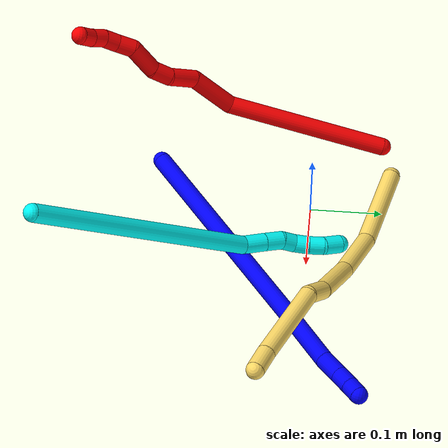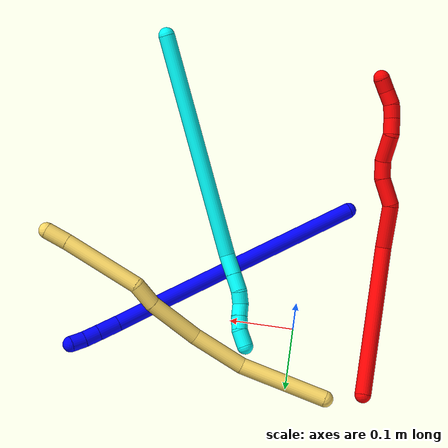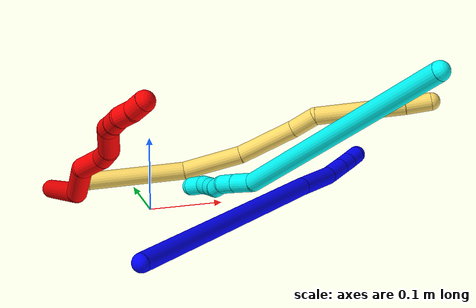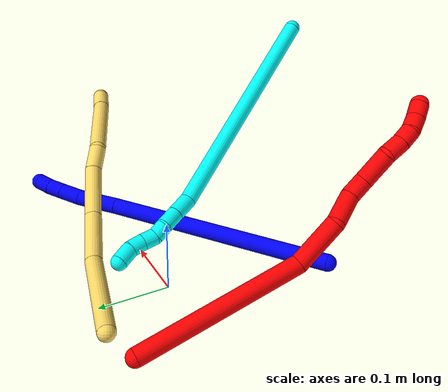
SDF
<sdf version="1.7">
 <world name="default">
  <model name="photoneo_s_sensor">
   <static>1</static>
   <pose>0 0 2 1.57079 1.57079 3.14159</pose>
   <link name="link">
    <inertial><mass>0.1</mass></inertial>
    <sensor name="sensor" type="depth">
     <update_rate>30</update_rate>
     <camera>
      <horizontal_fov>1.22</horizontal_fov>
      <image><width>1920</width><height>1200</height><format>B8G8R8</format></image>
      <clip><near>0.1</near><far>4</far></clip>
      <depth_camera><output>points</output></depth_camera>
     </camera>
     <plugin name="camera_plugin" filename="libgazebo_ros_depth_camera.so">
      <baseline>0.2</baseline>
      <alwaysOn>1</alwaysOn>
      <updateRate>0.0</updateRate>
      <cameraName>camera_ir</cameraName>
      <imageTopicName>/camera/color/image_raw</imageTopicName>
      <cameraInfoTopicName>/camera/color/camera_info</cameraInfoTopicName>
      <depthImageTopicName>/camera/depth/image_raw</depthImageTopicName>
      <depthImageCameraInfoTopicName>/camera/depth/camera_info</depthImageCameraInfoTopicName>
      <pointCloudTopicName>/camera/depth/points</pointCloudTopicName>
      <frameName>fr_optical</frameName>
      <pointCloudCutoff>0.1</pointCloudCutoff>
      <pointCloudCutoffMax>2.0</pointCloudCutoffMax>
      <distortionK1>0</distortionK1>
      <distortionK2>0</distortionK2>
      <distortionK3>0</distortionK3>
      <distortionT1>0</distortionT1>
      <distortionT2>0</distortionT2>
      <CxPrime>0</CxPrime>
      <Cx>0</Cx>
      <Cy>0</Cy>
      <focalLength>0</focalLength>
      <hackBaseline>0</hackBaseline>
     </plugin>
    </sensor>
   </link>
  </model>
  <model name="bin">
   <static>1</static>
   <link name="bottom">
    <collision name="collision-bottom">
     <pose>0 0 -0.01 0 -0 0</pose>
     <geometry><box><size>0.8 0.6 0.02</size></box></geometry>
     <surface>
      <friction><ode><mu>100</mu><mu2>100</mu2></ode></friction>
      <contact><collide_bitmask>65535</collide_bitmask></contact>
     </surface>
    </collision>
   </link>
   <link name="west_wall">
    <collision name="collision-west_wall">
     <pose>-0.41 0 0.1 0 -0 0</pose>
     <geometry><box><size>0.02 0.6 0.2</size></box></geometry>
     <surface>
      <friction><ode><mu>100</mu><mu2>100</mu2></ode></friction>
      <contact><collide_bitmask>65535</collide_bitmask></contact>
     </surface>
    </collision>
   </link>
   <link name="east_wall">
    <collision name="collision-east_wall">
     <pose>0.41 0 0.1 0 -0 0</pose>
     <geometry><box><size>0.02 0.6 0.2</size></box></geometry>
     <surface>
      <friction><ode><mu>100</mu><mu2>100</mu2></ode></friction>
      <contact><collide_bitmask>65535</collide_bitmask></contact>
     </surface>
    </collision>
   </link>
   <link name="south_wall">
    <collision name="collision-south_wall">
     <pose>0 -0.31 0.1 0 -0 0</pose>
     <geometry><box><size>0.8 0.02 0.2</size></box></geometry>
     <surface>
      <friction><ode><mu>100</mu><mu2>100</mu2></ode></friction>
      <contact><collide_bitmask>65535</collide_bitmask></contact>
     </surface>
    </collision>
   </link>
   <link name="north_wall">
    <collision name="collision-north_wall">
     <pose>0 0.31 0.1 0 -0 0</pose>
     <geometry><box><size>0.8 0.02 0.2</size></box></geometry>
     <surface>
      <friction><ode><mu>100</mu><mu2>100</mu2></ode></friction>
      <contact><collide_bitmask>65535</collide_bitmask></contact>
     </surface>
    </collision>
   </link>
  </model>
  <model name="1">
   <static>0</static>
   <link name="1">
    <collision name="collision-cylinder-e_1_1_4">
     <pose>0.09911 0.076376 -0.121747 -2.58132 0.603713 -1.64977</pose>
     <geometry><cylinder><radius>0.0125</radius><length>0.349161</length></cylinder></geometry>
     <surface>
      <friction><ode><mu>1.16</mu><mu2>1.16</mu2><slip1>0</slip1><slip2>0</slip2></ode></friction>
      <contact><ode><kp>1e+06</kp><kd>1</kd><max_vel>0</max_vel><min_depth>0.001</min_depth></ode></contact>
     </surface>
    </collision>
    <visual name="visual-cylinder-e_1_1_4">
     <pose>0.09911 0.076376 -0.121747 -2.58132 0.603713 -1.64977</pose>
     <geometry><cylinder><radius>0.0125</radius><length>0.349161</length></cylinder></geometry>
     <material><ambient>0 0 1 1</ambient></material>
    </visual>
    <collision name="collision-cylinder-e_2_4_5">
     <pose>0.218502 0.166941 -0.267782 -2.61286 0.624704 -1.74627</pose>
     <geometry><cylinder><radius>0.0125</radius><length>0.069359</length></cylinder></geometry>
     <surface>
      <friction><ode><mu>1.16</mu><mu2>1.16</mu2><slip1>0</slip1><slip2>0</slip2></ode></friction>
      <contact><ode><kp>1e+06</kp><kd>1</kd><max_vel>0</max_vel><min_depth>0.001</min_depth></ode></contact>
     </surface>
    </collision>
    <visual name="visual-cylinder-e_2_4_5">
     <pose>0.218502 0.166941 -0.267782 -2.61286 0.624704 -1.74627</pose>
     <geometry><cylinder><radius>0.0125</radius><length>0.069359</length></cylinder></geometry>
     <material><ambient>0 0 1 1</ambient></material>
    </visual>
    <collision name="collision-cylinder-e_3_5_6">
     <pose>0.247347 0.190273 -0.304357 -2.50189 0.509792 -1.33311</pose>
     <geometry><cylinder><radius>0.0125</radius><length>0.03509</length></cylinder></geometry>
     <surface>
      <friction><ode><mu>1.16</mu><mu2>1.16</mu2><slip1>0</slip1><slip2>0</slip2></ode></friction>
      <contact><ode><kp>1e+06</kp><kd>1</kd><max_vel>0</max_vel><min_depth>0.001</min_depth></ode></contact>
     </surface>
    </collision>
    <visual name="visual-cylinder-e_3_5_6">
     <pose>0.247347 0.190273 -0.304357 -2.50189 0.509792 -1.33311</pose>
     <geometry><cylinder><radius>0.0125</radius><length>0.03509</length></cylinder></geometry>
     <material><ambient>0 0 1 1</ambient></material>
    </visual>
    <collision name="collision-cylinder-e_4_6_7">
     <pose>0.261772 0.20578 -0.325011 -2.49138 0.508727 -1.31405</pose>
     <geometry><cylinder><radius>0.0125</radius><length>0.024076</length></cylinder></geometry>
     <surface>
      <friction><ode><mu>1.16</mu><mu2>1.16</mu2><slip1>0</slip1><slip2>0</slip2></ode></friction>
      <contact><ode><kp>1e+06</kp><kd>1</kd><max_vel>0</max_vel><min_depth>0.001</min_depth></ode></contact>
     </surface>
    </collision>
    <visual name="visual-cylinder-e_4_6_7">
     <pose>0.261772 0.20578 -0.325011 -2.49138 0.508727 -1.31405</pose>
     <geometry><cylinder><radius>0.0125</radius><length>0.024076</length></cylinder></geometry>
     <material><ambient>0 0 1 1</ambient></material>
    </visual>
    <collision name="collision-cylinder-e_5_7_2">
     <pose>0.272993 0.219006 -0.340358 -2.36462 0.500923 -1.1173</pose>
     <geometry><cylinder><radius>0.0125</radius><length>0.022314</length></cylinder></geometry>
     <surface>
      <friction><ode><mu>1.16</mu><mu2>1.16</mu2><slip1>0</slip1><slip2>0</slip2></ode></friction>
      <contact><ode><kp>1e+06</kp><kd>1</kd><max_vel>0</max_vel><min_depth>0.001</min_depth></ode></contact>
     </surface>
    </collision>
    <visual name="visual-cylinder-e_5_7_2">
     <pose>0.272993 0.219006 -0.340358 -2.36462 0.500923 -1.1173</pose>
     <geometry><cylinder><radius>0.0125</radius><length>0.022314</length></cylinder></geometry>
     <material><ambient>0 0 1 1</ambient></material>
    </visual>
    <collision name="collision-sphere-2">
     <pose>0.278351 0.225867 -0.347336 0 -0 0</pose>
     <geometry><sphere><radius>0.0125</radius></sphere></geometry>
     <surface>
      <friction><ode><mu>1.16</mu><mu2>1.16</mu2><slip1>0</slip1><slip2>0</slip2></ode></friction>
      <contact><ode><kp>1e+06</kp><kd>1</kd><max_vel>0</max_vel><min_depth>0.001</min_depth></ode></contact>
     </surface>
    </collision>
    <visual name="visual-sphere-2">
     <pose>0.278351 0.225867 -0.347336 0 -0 0</pose>
     <geometry><sphere><radius>0.0125</radius></sphere></geometry>
     <material><ambient>0 0 1 1</ambient></material>
    </visual>
    <collision name="collision-sphere-7">
     <pose>0.267635 0.212144 -0.33338 0 -0 0</pose>
     <geometry><sphere><radius>0.0125</radius></sphere></geometry>
     <surface>
      <friction><ode><mu>1.16</mu><mu2>1.16</mu2><slip1>0</slip1><slip2>0</slip2></ode></friction>
      <contact><ode><kp>1e+06</kp><kd>1</kd><max_vel>0</max_vel><min_depth>0.001</min_depth></ode></contact>
     </surface>
    </collision>
    <visual name="visual-sphere-7">
     <pose>0.267635 0.212144 -0.33338 0 -0 0</pose>
     <geometry><sphere><radius>0.0125</radius></sphere></geometry>
     <material><ambient>0 0 1 1</ambient></material>
    </visual>
    <collision name="collision-sphere-6">
     <pose>0.255909 0.199415 -0.316643 0 -0 0</pose>
     <geometry><sphere><radius>0.0125</radius></sphere></geometry>
     <surface>
      <friction><ode><mu>1.16</mu><mu2>1.16</mu2><slip1>0</slip1><slip2>0</slip2></ode></friction>
      <contact><ode><kp>1e+06</kp><kd>1</kd><max_vel>0</max_vel><min_depth>0.001</min_depth></ode></contact>
     </surface>
    </collision>
    <visual name="visual-sphere-6">
     <pose>0.255909 0.199415 -0.316643 0 -0 0</pose>
     <geometry><sphere><radius>0.0125</radius></sphere></geometry>
     <material><ambient>0 0 1 1</ambient></material>
    </visual>
    <collision name="collision-sphere-5">
     <pose>0.238785 0.181131 -0.292071 0 -0 0</pose>
     <geometry><sphere><radius>0.0125</radius></sphere></geometry>
     <surface>
      <friction><ode><mu>1.16</mu><mu2>1.16</mu2><slip1>0</slip1><slip2>0</slip2></ode></friction>
      <contact><ode><kp>1e+06</kp><kd>1</kd><max_vel>0</max_vel><min_depth>0.001</min_depth></ode></contact>
     </surface>
    </collision>
    <visual name="visual-sphere-5">
     <pose>0.238785 0.181131 -0.292071 0 -0 0</pose>
     <geometry><sphere><radius>0.0125</radius></sphere></geometry>
     <material><ambient>0 0 1 1</ambient></material>
    </visual>
    <collision name="collision-sphere-1">
     <geometry><sphere><radius>0.0125</radius></sphere></geometry>
     <surface>
      <friction><ode><mu>1.16</mu><mu2>1.16</mu2><slip1>0</slip1><slip2>0</slip2></ode></friction>
      <contact><ode><kp>1e+06</kp><kd>1</kd><max_vel>0</max_vel><min_depth>0.001</min_depth></ode></contact>
     </surface>
    </collision>
    <visual name="visual-sphere-1">
     <geometry><sphere><radius>0.0125</radius></sphere></geometry>
     <material><ambient>0 0 1 1</ambient></material>
    </visual>
    <collision name="collision-sphere-4">
     <pose>0.19822 0.152752 -0.243494 0 -0 0</pose>
     <geometry><sphere><radius>0.0125</radius></sphere></geometry>
     <surface>
      <friction><ode><mu>1.16</mu><mu2>1.16</mu2><slip1>0</slip1><slip2>0</slip2></ode></friction>
      <contact><ode><kp>1e+06</kp><kd>1</kd><max_vel>0</max_vel><min_depth>0.001</min_depth></ode></contact>
     </surface>
    </collision>
    <visual name="visual-sphere-4">
     <pose>0.19822 0.152752 -0.243494 0 -0 0</pose>
     <geometry><sphere><radius>0.0125</radius></sphere></geometry>
     <material><ambient>0 0 1 1</ambient></material>
    </visual>
    <inertial>
     <pose>0.141668 0.109529 -0.174364 0 -0 0</pose>
     <mass>0.5</mass>
     <inertia>
      <ixx>-0.003166</ixx>
      <ixy>0</ixy>
      <ixz>0</ixz>
      <iyy>-0.001613</iyy>
      <iyz>0</iyz>
      <izz>-0.003646</izz>
     </inertia>
    </inertial>
   </link>
   <pose>-0.063598 -0.216545 0.011498 1.40872 0.50381 -0.214492</pose>
  </model>
  <model name="2">
   <static>0</static>
   <link name="2">
    <collision name="collision-cylinder-e_1_1_4">
     <pose>0.012173 -0.04728 0.103628 0.428035 0.106469 0.023162</pose>
     <geometry><cylinder><radius>0.0125</radius><length>0.229106</length></cylinder></geometry>
     <surface>
      <friction><ode><mu>1.16</mu><mu2>1.16</mu2><slip1>0</slip1><slip2>0</slip2></ode></friction>
      <contact><ode><kp>1e+06</kp><kd>1</kd><max_vel>0</max_vel><min_depth>0.001</min_depth></ode></contact>
     </surface>
    </collision>
    <visual name="visual-cylinder-e_1_1_4">
     <pose>0.012173 -0.04728 0.103628 0.428035 0.106469 0.023162</pose>
     <geometry><cylinder><radius>0.0125</radius><length>0.229106</length></cylinder></geometry>
     <material><ambient>1 0 0 1</ambient></material>
    </visual>
    <collision name="collision-cylinder-e_2_4_5">
     <pose>0.013866 -0.101926 0.239046 0.227712 -0.310753 -0.03582</pose>
     <geometry><cylinder><radius>0.0125</radius><length>0.068549</length></cylinder></geometry>
     <surface>
      <friction><ode><mu>1.16</mu><mu2>1.16</mu2><slip1>0</slip1><slip2>0</slip2></ode></friction>
      <contact><ode><kp>1e+06</kp><kd>1</kd><max_vel>0</max_vel><min_depth>0.001</min_depth></ode></contact>
     </surface>
    </collision>
    <visual name="visual-cylinder-e_2_4_5">
     <pose>0.013866 -0.101926 0.239046 0.227712 -0.310753 -0.03582</pose>
     <geometry><cylinder><radius>0.0125</radius><length>0.068549</length></cylinder></geometry>
     <material><ambient>1 0 0 1</ambient></material>
    </visual>
    <collision name="collision-cylinder-e_3_5_6">
     <pose>0.004775 -0.107198 0.292018 -0.09859 0.065142 -0.003215</pose>
     <geometry><cylinder><radius>0.0125</radius><length>0.04266</length></cylinder></geometry>
     <surface>
      <friction><ode><mu>1.16</mu><mu2>1.16</mu2><slip1>0</slip1><slip2>0</slip2></ode></friction>
      <contact><ode><kp>1e+06</kp><kd>1</kd><max_vel>0</max_vel><min_depth>0.001</min_depth></ode></contact>
     </surface>
    </collision>
    <visual name="visual-cylinder-e_3_5_6">
     <pose>0.004775 -0.107198 0.292018 -0.09859 0.065142 -0.003215</pose>
     <geometry><cylinder><radius>0.0125</radius><length>0.04266</length></cylinder></geometry>
     <material><ambient>1 0 0 1</ambient></material>
    </visual>
    <collision name="collision-cylinder-e_4_6_7">
     <pose>0.004498 -0.107509 0.326738 0.175894 -0.12048 -0.010636</pose>
     <geometry><cylinder><radius>0.0125</radius><length>0.027703</length></cylinder></geometry>
     <surface>
      <friction><ode><mu>1.16</mu><mu2>1.16</mu2><slip1>0</slip1><slip2>0</slip2></ode></friction>
      <contact><ode><kp>1e+06</kp><kd>1</kd><max_vel>0</max_vel><min_depth>0.001</min_depth></ode></contact>
     </surface>
    </collision>
    <visual name="visual-cylinder-e_4_6_7">
     <pose>0.004498 -0.107509 0.326738 0.175894 -0.12048 -0.010636</pose>
     <geometry><cylinder><radius>0.0125</radius><length>0.027703</length></cylinder></geometry>
     <material><ambient>1 0 0 1</ambient></material>
    </visual>
    <collision name="collision-cylinder-e_5_7_8">
     <pose>-0.007435 -0.115271 0.358763 0.281979 -0.490114 -0.070959</pose>
     <geometry><cylinder><radius>0.0125</radius><length>0.043627</length></cylinder></geometry>
     <surface>
      <friction><ode><mu>1.16</mu><mu2>1.16</mu2><slip1>0</slip1><slip2>0</slip2></ode></friction>
      <contact><ode><kp>1e+06</kp><kd>1</kd><max_vel>0</max_vel><min_depth>0.001</min_depth></ode></contact>
     </surface>
    </collision>
    <visual name="visual-cylinder-e_5_7_8">
     <pose>-0.007435 -0.115271 0.358763 0.281979 -0.490114 -0.070959</pose>
     <geometry><cylinder><radius>0.0125</radius><length>0.043627</length></cylinder></geometry>
     <material><ambient>1 0 0 1</ambient></material>
    </visual>
    <collision name="collision-cylinder-e_6_8_9">
     <pose>-0.017743 -0.123841 0.3893 0.260683 -0.003267 -0.000428</pose>
     <geometry><cylinder><radius>0.0125</radius><length>0.024947</length></cylinder></geometry>
     <surface>
      <friction><ode><mu>1.16</mu><mu2>1.16</mu2><slip1>0</slip1><slip2>0</slip2></ode></friction>
      <contact><ode><kp>1e+06</kp><kd>1</kd><max_vel>0</max_vel><min_depth>0.001</min_depth></ode></contact>
     </surface>
    </collision>
    <visual name="visual-cylinder-e_6_8_9">
     <pose>-0.017743 -0.123841 0.3893 0.260683 -0.003267 -0.000428</pose>
     <geometry><cylinder><radius>0.0125</radius><length>0.024947</length></cylinder></geometry>
     <material><ambient>1 0 0 1</ambient></material>
    </visual>
    <collision name="collision-cylinder-e_7_9_10">
     <pose>-0.018654 -0.128423 0.411747 0.130775 -0.082748 -0.005421</pose>
     <geometry><cylinder><radius>0.0125</radius><length>0.021041</length></cylinder></geometry>
     <surface>
      <friction><ode><mu>1.16</mu><mu2>1.16</mu2><slip1>0</slip1><slip2>0</slip2></ode></friction>
      <contact><ode><kp>1e+06</kp><kd>1</kd><max_vel>0</max_vel><min_depth>0.001</min_depth></ode></contact>
     </surface>
    </collision>
    <visual name="visual-cylinder-e_7_9_10">
     <pose>-0.018654 -0.128423 0.411747 0.130775 -0.082748 -0.005421</pose>
     <geometry><cylinder><radius>0.0125</radius><length>0.021041</length></cylinder></geometry>
     <material><ambient>1 0 0 1</ambient></material>
    </visual>
    <collision name="collision-cylinder-e_8_10_11">
     <pose>-0.018627 -0.12796 0.432793 -0.170133 0.082732 -0.007059</pose>
     <geometry><cylinder><radius>0.0125</radius><length>0.021688</length></cylinder></geometry>
     <surface>
      <friction><ode><mu>1.16</mu><mu2>1.16</mu2><slip1>0</slip1><slip2>0</slip2></ode></friction>
      <contact><ode><kp>1e+06</kp><kd>1</kd><max_vel>0</max_vel><min_depth>0.001</min_depth></ode></contact>
     </surface>
    </collision>
    <visual name="visual-cylinder-e_8_10_11">
     <pose>-0.018627 -0.12796 0.432793 -0.170133 0.082732 -0.007059</pose>
     <geometry><cylinder><radius>0.0125</radius><length>0.021688</length></cylinder></geometry>
     <material><ambient>1 0 0 1</ambient></material>
    </visual>
    <collision name="collision-cylinder-e_9_11_2">
     <pose>-0.018688 -0.123643 0.453434 -0.244047 -0.092658 0.011371</pose>
     <geometry><cylinder><radius>0.0125</radius><length>0.02068</length></cylinder></geometry>
     <surface>
      <friction><ode><mu>1.16</mu><mu2>1.16</mu2><slip1>0</slip1><slip2>0</slip2></ode></friction>
      <contact><ode><kp>1e+06</kp><kd>1</kd><max_vel>0</max_vel><min_depth>0.001</min_depth></ode></contact>
     </surface>
    </collision>
    <visual name="visual-cylinder-e_9_11_2">
     <pose>-0.018688 -0.123643 0.453434 -0.244047 -0.092658 0.011371</pose>
     <geometry><cylinder><radius>0.0125</radius><length>0.02068</length></cylinder></geometry>
     <material><ambient>1 0 0 1</ambient></material>
    </visual>
    <collision name="collision-sphere-2">
     <pose>-0.019644 -0.121155 0.463425 0 -0 0</pose>
     <geometry><sphere><radius>0.0125</radius></sphere></geometry>
     <surface>
      <friction><ode><mu>1.16</mu><mu2>1.16</mu2><slip1>0</slip1><slip2>0</slip2></ode></friction>
      <contact><ode><kp>1e+06</kp><kd>1</kd><max_vel>0</max_vel><min_depth>0.001</min_depth></ode></contact>
     </surface>
    </collision>
    <visual name="visual-sphere-2">
     <pose>-0.019644 -0.121155 0.463425 0 -0 0</pose>
     <geometry><sphere><radius>0.0125</radius></sphere></geometry>
     <material><ambient>1 0 0 1</ambient></material>
    </visual>
    <collision name="collision-sphere-11">
     <pose>-0.017731 -0.126131 0.443444 0 -0 0</pose>
     <geometry><sphere><radius>0.0125</radius></sphere></geometry>
     <surface>
      <friction><ode><mu>1.16</mu><mu2>1.16</mu2><slip1>0</slip1><slip2>0</slip2></ode></friction>
      <contact><ode><kp>1e+06</kp><kd>1</kd><max_vel>0</max_vel><min_depth>0.001</min_depth></ode></contact>
     </surface>
    </collision>
    <visual name="visual-sphere-11">
     <pose>-0.017731 -0.126131 0.443444 0 -0 0</pose>
     <geometry><sphere><radius>0.0125</radius></sphere></geometry>
     <material><ambient>1 0 0 1</ambient></material>
    </visual>
    <collision name="collision-sphere-10">
     <pose>-0.019523 -0.12979 0.422141 0 -0 0</pose>
     <geometry><sphere><radius>0.0125</radius></sphere></geometry>
     <surface>
      <friction><ode><mu>1.16</mu><mu2>1.16</mu2><slip1>0</slip1><slip2>0</slip2></ode></friction>
      <contact><ode><kp>1e+06</kp><kd>1</kd><max_vel>0</max_vel><min_depth>0.001</min_depth></ode></contact>
     </surface>
    </collision>
    <visual name="visual-sphere-10">
     <pose>-0.019523 -0.12979 0.422141 0 -0 0</pose>
     <geometry><sphere><radius>0.0125</radius></sphere></geometry>
     <material><ambient>1 0 0 1</ambient></material>
    </visual>
    <collision name="collision-sphere-9">
     <pose>-0.017784 -0.127056 0.401352 0 -0 0</pose>
     <geometry><sphere><radius>0.0125</radius></sphere></geometry>
     <surface>
      <friction><ode><mu>1.16</mu><mu2>1.16</mu2><slip1>0</slip1><slip2>0</slip2></ode></friction>
      <contact><ode><kp>1e+06</kp><kd>1</kd><max_vel>0</max_vel><min_depth>0.001</min_depth></ode></contact>
     </surface>
    </collision>
    <visual name="visual-sphere-9">
     <pose>-0.017784 -0.127056 0.401352 0 -0 0</pose>
     <geometry><sphere><radius>0.0125</radius></sphere></geometry>
     <material><ambient>1 0 0 1</ambient></material>
    </visual>
    <collision name="collision-sphere-4">
     <pose>0.024347 -0.09456 0.207256 0 -0 0</pose>
     <geometry><sphere><radius>0.0125</radius></sphere></geometry>
     <surface>
      <friction><ode><mu>1.16</mu><mu2>1.16</mu2><slip1>0</slip1><slip2>0</slip2></ode></friction>
      <contact><ode><kp>1e+06</kp><kd>1</kd><max_vel>0</max_vel><min_depth>0.001</min_depth></ode></contact>
     </surface>
    </collision>
    <visual name="visual-sphere-4">
     <pose>0.024347 -0.09456 0.207256 0 -0 0</pose>
     <geometry><sphere><radius>0.0125</radius></sphere></geometry>
     <material><ambient>1 0 0 1</ambient></material>
    </visual>
    <collision name="collision-sphere-1">
     <geometry><sphere><radius>0.0125</radius></sphere></geometry>
     <surface>
      <friction><ode><mu>1.16</mu><mu2>1.16</mu2><slip1>0</slip1><slip2>0</slip2></ode></friction>
      <contact><ode><kp>1e+06</kp><kd>1</kd><max_vel>0</max_vel><min_depth>0.001</min_depth></ode></contact>
     </surface>
    </collision>
    <visual name="visual-sphere-1">
     <geometry><sphere><radius>0.0125</radius></sphere></geometry>
     <material><ambient>1 0 0 1</ambient></material>
    </visual>
    <collision name="collision-sphere-8">
     <pose>-0.017703 -0.120626 0.377248 0 -0 0</pose>
     <geometry><sphere><radius>0.0125</radius></sphere></geometry>
     <surface>
      <friction><ode><mu>1.16</mu><mu2>1.16</mu2><slip1>0</slip1><slip2>0</slip2></ode></friction>
      <contact><ode><kp>1e+06</kp><kd>1</kd><max_vel>0</max_vel><min_depth>0.001</min_depth></ode></contact>
     </surface>
    </collision>
    <visual name="visual-sphere-8">
     <pose>-0.017703 -0.120626 0.377248 0 -0 0</pose>
     <geometry><sphere><radius>0.0125</radius></sphere></geometry>
     <material><ambient>1 0 0 1</ambient></material>
    </visual>
    <collision name="collision-sphere-5">
     <pose>0.003386 -0.109293 0.270837 0 -0 0</pose>
     <geometry><sphere><radius>0.0125</radius></sphere></geometry>
     <surface>
      <friction><ode><mu>1.16</mu><mu2>1.16</mu2><slip1>0</slip1><slip2>0</slip2></ode></friction>
      <contact><ode><kp>1e+06</kp><kd>1</kd><max_vel>0</max_vel><min_depth>0.001</min_depth></ode></contact>
     </surface>
    </collision>
    <visual name="visual-sphere-5">
     <pose>0.003386 -0.109293 0.270837 0 -0 0</pose>
     <geometry><sphere><radius>0.0125</radius></sphere></geometry>
     <material><ambient>1 0 0 1</ambient></material>
    </visual>
    <collision name="collision-sphere-6">
     <pose>0.006163 -0.105103 0.313199 0 -0 0</pose>
     <geometry><sphere><radius>0.0125</radius></sphere></geometry>
     <surface>
      <friction><ode><mu>1.16</mu><mu2>1.16</mu2><slip1>0</slip1><slip2>0</slip2></ode></friction>
      <contact><ode><kp>1e+06</kp><kd>1</kd><max_vel>0</max_vel><min_depth>0.001</min_depth></ode></contact>
     </surface>
    </collision>
    <visual name="visual-sphere-6">
     <pose>0.006163 -0.105103 0.313199 0 -0 0</pose>
     <geometry><sphere><radius>0.0125</radius></sphere></geometry>
     <material><ambient>1 0 0 1</ambient></material>
    </visual>
    <collision name="collision-sphere-7">
     <pose>0.002833 -0.109916 0.340277 0 -0 0</pose>
     <geometry><sphere><radius>0.0125</radius></sphere></geometry>
     <surface>
      <friction><ode><mu>1.16</mu><mu2>1.16</mu2><slip1>0</slip1><slip2>0</slip2></ode></friction>
      <contact><ode><kp>1e+06</kp><kd>1</kd><max_vel>0</max_vel><min_depth>0.001</min_depth></ode></contact>
     </surface>
    </collision>
    <visual name="visual-sphere-7">
     <pose>0.002833 -0.109916 0.340277 0 -0 0</pose>
     <geometry><sphere><radius>0.0125</radius></sphere></geometry>
     <material><ambient>1 0 0 1</ambient></material>
    </visual>
    <inertial>
     <pose>0.004236 -0.083046 0.228856 0 -0 0</pose>
     <mass>0.5</mass>
     <inertia>
      <ixx>0.001079</ixx>
      <ixy>0</ixy>
      <ixz>0</ixz>
      <iyy>0.000988</iyy>
      <iyz>0</iyz>
      <izz>0.000367</izz>
     </inertia>
    </inertial>
   </link>
   <pose>-0.117789 0.094659 0.011494 0.4271 0.972973 -0.6906</pose>
  </model>
  <model name="3">
   <static>0</static>
   <link name="3">
    <collision name="collision-cylinder-e_1_1_4">
     <pose>0.017234 0.011974 -0.174847 -3.07322 0.098021 -1.92383</pose>
     <geometry><cylinder><radius>0.0125</radius><length>0.352204</length></cylinder></geometry>
     <surface>
      <friction><ode><mu>1.16</mu><mu2>1.16</mu2><slip1>0</slip1><slip2>0</slip2></ode></friction>
      <contact><ode><kp>1e+06</kp><kd>1</kd><max_vel>0</max_vel><min_depth>0.001</min_depth></ode></contact>
     </surface>
    </collision>
    <visual name="visual-cylinder-e_1_1_4">
     <pose>0.017234 0.011974 -0.174847 -3.07322 0.098021 -1.92383</pose>
     <geometry><cylinder><radius>0.0125</radius><length>0.352204</length></cylinder></geometry>
     <material><ambient>0.003922 1 0.996078 1</ambient></material>
    </visual>
    <collision name="collision-cylinder-e_2_4_5">
     <pose>0.031324 0.027461 -0.365393 -2.92138 -0.193033 1.43853</pose>
     <geometry><cylinder><radius>0.0125</radius><length>0.032783</length></cylinder></geometry>
     <surface>
      <friction><ode><mu>1.16</mu><mu2>1.16</mu2><slip1>0</slip1><slip2>0</slip2></ode></friction>
      <contact><ode><kp>1e+06</kp><kd>1</kd><max_vel>0</max_vel><min_depth>0.001</min_depth></ode></contact>
     </surface>
    </collision>
    <visual name="visual-cylinder-e_2_4_5">
     <pose>0.031324 0.027461 -0.365393 -2.92138 -0.193033 1.43853</pose>
     <geometry><cylinder><radius>0.0125</radius><length>0.032783</length></cylinder></geometry>
     <material><ambient>0.003922 1 0.996078 1</ambient></material>
    </visual>
    <collision name="collision-cylinder-e_3_5_6">
     <pose>0.025849 0.033903 -0.394123 -2.92063 -0.1727 1.32529</pose>
     <geometry><cylinder><radius>0.0125</radius><length>0.027117</length></cylinder></geometry>
     <surface>
      <friction><ode><mu>1.16</mu><mu2>1.16</mu2><slip1>0</slip1><slip2>0</slip2></ode></friction>
      <contact><ode><kp>1e+06</kp><kd>1</kd><max_vel>0</max_vel><min_depth>0.001</min_depth></ode></contact>
     </surface>
    </collision>
    <visual name="visual-cylinder-e_3_5_6">
     <pose>0.025849 0.033903 -0.394123 -2.92063 -0.1727 1.32529</pose>
     <geometry><cylinder><radius>0.0125</radius><length>0.027117</length></cylinder></geometry>
     <material><ambient>0.003922 1 0.996078 1</ambient></material>
    </visual>
    <collision name="collision-cylinder-e_4_6_7">
     <pose>0.024867 0.039186 -0.416888 -2.90412 0.133741 -1.02306</pose>
     <geometry><cylinder><radius>0.0125</radius><length>0.020207</length></cylinder></geometry>
     <surface>
      <friction><ode><mu>1.16</mu><mu2>1.16</mu2><slip1>0</slip1><slip2>0</slip2></ode></friction>
      <contact><ode><kp>1e+06</kp><kd>1</kd><max_vel>0</max_vel><min_depth>0.001</min_depth></ode></contact>
     </surface>
    </collision>
    <visual name="visual-cylinder-e_4_6_7">
     <pose>0.024867 0.039186 -0.416888 -2.90412 0.133741 -1.02306</pose>
     <geometry><cylinder><radius>0.0125</radius><length>0.020207</length></cylinder></geometry>
     <material><ambient>0.003922 1 0.996078 1</ambient></material>
    </visual>
    <collision name="collision-cylinder-e_5_7_8">
     <pose>0.025944 0.047518 -0.434926 -2.51783 -0.026318 0.08159</pose>
     <geometry><cylinder><radius>0.0125</radius><length>0.020472</length></cylinder></geometry>
     <surface>
      <friction><ode><mu>1.16</mu><mu2>1.16</mu2><slip1>0</slip1><slip2>0</slip2></ode></friction>
      <contact><ode><kp>1e+06</kp><kd>1</kd><max_vel>0</max_vel><min_depth>0.001</min_depth></ode></contact>
     </surface>
    </collision>
    <visual name="visual-cylinder-e_5_7_8">
     <pose>0.025944 0.047518 -0.434926 -2.51783 -0.026318 0.08159</pose>
     <geometry><cylinder><radius>0.0125</radius><length>0.020472</length></cylinder></geometry>
     <material><ambient>0.003922 1 0.996078 1</ambient></material>
    </visual>
    <collision name="collision-cylinder-e_6_8_9">
     <pose>0.024586 0.058903 -0.452338 -2.60563 -0.102504 0.36937</pose>
     <geometry><cylinder><radius>0.0125</radius><length>0.021295</length></cylinder></geometry>
     <surface>
      <friction><ode><mu>1.16</mu><mu2>1.16</mu2><slip1>0</slip1><slip2>0</slip2></ode></friction>
      <contact><ode><kp>1e+06</kp><kd>1</kd><max_vel>0</max_vel><min_depth>0.001</min_depth></ode></contact>
     </surface>
    </collision>
    <visual name="visual-cylinder-e_6_8_9">
     <pose>0.024586 0.058903 -0.452338 -2.60563 -0.102504 0.36937</pose>
     <geometry><cylinder><radius>0.0125</radius><length>0.021295</length></cylinder></geometry>
     <material><ambient>0.003922 1 0.996078 1</ambient></material>
    </visual>
    <collision name="collision-cylinder-e_7_9_2">
     <pose>0.02145 0.066667 -0.474024 -2.95654 -0.158549 1.41607</pose>
     <geometry><cylinder><radius>0.0125</radius><length>0.025922</length></cylinder></geometry>
     <surface>
      <friction><ode><mu>1.16</mu><mu2>1.16</mu2><slip1>0</slip1><slip2>0</slip2></ode></friction>
      <contact><ode><kp>1e+06</kp><kd>1</kd><max_vel>0</max_vel><min_depth>0.001</min_depth></ode></contact>
     </surface>
    </collision>
    <visual name="visual-cylinder-e_7_9_2">
     <pose>0.02145 0.066667 -0.474024 -2.95654 -0.158549 1.41607</pose>
     <geometry><cylinder><radius>0.0125</radius><length>0.025922</length></cylinder></geometry>
     <material><ambient>0.003922 1 0.996078 1</ambient></material>
    </visual>
    <collision name="collision-sphere-2">
     <pose>0.019403 0.069022 -0.486604 0 -0 0</pose>
     <geometry><sphere><radius>0.0125</radius></sphere></geometry>
     <surface>
      <friction><ode><mu>1.16</mu><mu2>1.16</mu2><slip1>0</slip1><slip2>0</slip2></ode></friction>
      <contact><ode><kp>1e+06</kp><kd>1</kd><max_vel>0</max_vel><min_depth>0.001</min_depth></ode></contact>
     </surface>
    </collision>
    <visual name="visual-sphere-2">
     <pose>0.019403 0.069022 -0.486604 0 -0 0</pose>
     <geometry><sphere><radius>0.0125</radius></sphere></geometry>
     <material><ambient>0.003922 1 0.996078 1</ambient></material>
    </visual>
    <collision name="collision-sphere-9">
     <pose>0.023496 0.064312 -0.461444 0 -0 0</pose>
     <geometry><sphere><radius>0.0125</radius></sphere></geometry>
     <surface>
      <friction><ode><mu>1.16</mu><mu2>1.16</mu2><slip1>0</slip1><slip2>0</slip2></ode></friction>
      <contact><ode><kp>1e+06</kp><kd>1</kd><max_vel>0</max_vel><min_depth>0.001</min_depth></ode></contact>
     </surface>
    </collision>
    <visual name="visual-sphere-9">
     <pose>0.023496 0.064312 -0.461444 0 -0 0</pose>
     <geometry><sphere><radius>0.0125</radius></sphere></geometry>
     <material><ambient>0.003922 1 0.996078 1</ambient></material>
    </visual>
    <collision name="collision-sphere-4">
     <pose>0.034468 0.023947 -0.349695 0 -0 0</pose>
     <geometry><sphere><radius>0.0125</radius></sphere></geometry>
     <surface>
      <friction><ode><mu>1.16</mu><mu2>1.16</mu2><slip1>0</slip1><slip2>0</slip2></ode></friction>
      <contact><ode><kp>1e+06</kp><kd>1</kd><max_vel>0</max_vel><min_depth>0.001</min_depth></ode></contact>
     </surface>
    </collision>
    <visual name="visual-sphere-4">
     <pose>0.034468 0.023947 -0.349695 0 -0 0</pose>
     <geometry><sphere><radius>0.0125</radius></sphere></geometry>
     <material><ambient>0.003922 1 0.996078 1</ambient></material>
    </visual>
    <collision name="collision-sphere-1">
     <geometry><sphere><radius>0.0125</radius></sphere></geometry>
     <surface>
      <friction><ode><mu>1.16</mu><mu2>1.16</mu2><slip1>0</slip1><slip2>0</slip2></ode></friction>
      <contact><ode><kp>1e+06</kp><kd>1</kd><max_vel>0</max_vel><min_depth>0.001</min_depth></ode></contact>
     </surface>
    </collision>
    <visual name="visual-sphere-1">
     <geometry><sphere><radius>0.0125</radius></sphere></geometry>
     <material><ambient>0.003922 1 0.996078 1</ambient></material>
    </visual>
    <collision name="collision-sphere-8">
     <pose>0.025675 0.053494 -0.443231 0 -0 0</pose>
     <geometry><sphere><radius>0.0125</radius></sphere></geometry>
     <surface>
      <friction><ode><mu>1.16</mu><mu2>1.16</mu2><slip1>0</slip1><slip2>0</slip2></ode></friction>
      <contact><ode><kp>1e+06</kp><kd>1</kd><max_vel>0</max_vel><min_depth>0.001</min_depth></ode></contact>
     </surface>
    </collision>
    <visual name="visual-sphere-8">
     <pose>0.025675 0.053494 -0.443231 0 -0 0</pose>
     <geometry><sphere><radius>0.0125</radius></sphere></geometry>
     <material><ambient>0.003922 1 0.996078 1</ambient></material>
    </visual>
    <collision name="collision-sphere-5">
     <pose>0.028179 0.030975 -0.381091 0 -0 0</pose>
     <geometry><sphere><radius>0.0125</radius></sphere></geometry>
     <surface>
      <friction><ode><mu>1.16</mu><mu2>1.16</mu2><slip1>0</slip1><slip2>0</slip2></ode></friction>
      <contact><ode><kp>1e+06</kp><kd>1</kd><max_vel>0</max_vel><min_depth>0.001</min_depth></ode></contact>
     </surface>
    </collision>
    <visual name="visual-sphere-5">
     <pose>0.028179 0.030975 -0.381091 0 -0 0</pose>
     <geometry><sphere><radius>0.0125</radius></sphere></geometry>
     <material><ambient>0.003922 1 0.996078 1</ambient></material>
    </visual>
    <collision name="collision-sphere-6">
     <pose>0.023519 0.03683 -0.407156 0 -0 0</pose>
     <geometry><sphere><radius>0.0125</radius></sphere></geometry>
     <surface>
      <friction><ode><mu>1.16</mu><mu2>1.16</mu2><slip1>0</slip1><slip2>0</slip2></ode></friction>
      <contact><ode><kp>1e+06</kp><kd>1</kd><max_vel>0</max_vel><min_depth>0.001</min_depth></ode></contact>
     </surface>
    </collision>
    <visual name="visual-sphere-6">
     <pose>0.023519 0.03683 -0.407156 0 -0 0</pose>
     <geometry><sphere><radius>0.0125</radius></sphere></geometry>
     <material><ambient>0.003922 1 0.996078 1</ambient></material>
    </visual>
    <collision name="collision-sphere-7">
     <pose>0.026214 0.041541 -0.42662 0 -0 0</pose>
     <geometry><sphere><radius>0.0125</radius></sphere></geometry>
     <surface>
      <friction><ode><mu>1.16</mu><mu2>1.16</mu2><slip1>0</slip1><slip2>0</slip2></ode></friction>
      <contact><ode><kp>1e+06</kp><kd>1</kd><max_vel>0</max_vel><min_depth>0.001</min_depth></ode></contact>
     </surface>
    </collision>
    <visual name="visual-sphere-7">
     <pose>0.026214 0.041541 -0.42662 0 -0 0</pose>
     <geometry><sphere><radius>0.0125</radius></sphere></geometry>
     <material><ambient>0.003922 1 0.996078 1</ambient></material>
    </visual>
    <inertial>
     <pose>0.019822 0.021568 -0.246992 0 -0 0</pose>
     <mass>0.5</mass>
     <inertia>
      <ixx>-0.004655</ixx>
      <ixy>0</ixy>
      <ixz>0</ixz>
      <iyy>-0.00212</iyy>
      <iyz>0</iyz>
      <izz>-0.000646</izz>
     </inertia>
    </inertial>
   </link>
   <pose>0.250337 -0.346461 0.250673 0.635868 0.880218 -0.208793</pose>
  </model>
  <model name="5">
   <static>0</static>
   <link name="5">
    <collision name="collision-cylinder-e_1_1_4">
     <pose>0.05192 -0.026284 -0.034251 2.48704 0.877112 1.88853</pose>
     <geometry><cylinder><radius>0.0125</radius><length>0.13505</length></cylinder></geometry>
     <surface>
      <friction><ode><mu>1.16</mu><mu2>1.16</mu2><slip1>0</slip1><slip2>0</slip2></ode></friction>
      <contact><ode><kp>1e+06</kp><kd>1</kd><max_vel>0</max_vel><min_depth>0.001</min_depth></ode></contact>
     </surface>
    </collision>
    <visual name="visual-cylinder-e_1_1_4">
     <pose>0.05192 -0.026284 -0.034251 2.48704 0.877112 1.88853</pose>
     <geometry><cylinder><radius>0.0125</radius><length>0.13505</length></cylinder></geometry>
     <material><ambient>1 0.858824 0.4 1</ambient></material>
    </visual>
    <collision name="collision-cylinder-e_2_4_5">
     <pose>0.132488 -0.063108 -0.097188 2.78949 0.75309 2.29607</pose>
     <geometry><cylinder><radius>0.0125</radius><length>0.08378</length></cylinder></geometry>
     <surface>
      <friction><ode><mu>1.16</mu><mu2>1.16</mu2><slip1>0</slip1><slip2>0</slip2></ode></friction>
      <contact><ode><kp>1e+06</kp><kd>1</kd><max_vel>0</max_vel><min_depth>0.001</min_depth></ode></contact>
     </surface>
    </collision>
    <visual name="visual-cylinder-e_2_4_5">
     <pose>0.132488 -0.063108 -0.097188 2.78949 0.75309 2.29607</pose>
     <geometry><cylinder><radius>0.0125</radius><length>0.08378</length></cylinder></geometry>
     <material><ambient>1 0.858824 0.4 1</ambient></material>
    </visual>
    <collision name="collision-cylinder-e_3_5_6">
     <pose>0.183991 -0.081904 -0.159453 2.9005 0.584041 2.37551</pose>
     <geometry><cylinder><radius>0.0125</radius><length>0.082897</length></cylinder></geometry>
     <surface>
      <friction><ode><mu>1.16</mu><mu2>1.16</mu2><slip1>0</slip1><slip2>0</slip2></ode></friction>
      <contact><ode><kp>1e+06</kp><kd>1</kd><max_vel>0</max_vel><min_depth>0.001</min_depth></ode></contact>
     </surface>
    </collision>
    <visual name="visual-cylinder-e_3_5_6">
     <pose>0.183991 -0.081904 -0.159453 2.9005 0.584041 2.37551</pose>
     <geometry><cylinder><radius>0.0125</radius><length>0.082897</length></cylinder></geometry>
     <material><ambient>1 0.858824 0.4 1</ambient></material>
    </visual>
    <collision name="collision-cylinder-e_4_6_7">
     <pose>0.216076 -0.090109 -0.209488 -3.13848 0.511191 -3.12969</pose>
     <geometry><cylinder><radius>0.0125</radius><length>0.037738</length></cylinder></geometry>
     <surface>
      <friction><ode><mu>1.16</mu><mu2>1.16</mu2><slip1>0</slip1><slip2>0</slip2></ode></friction>
      <contact><ode><kp>1e+06</kp><kd>1</kd><max_vel>0</max_vel><min_depth>0.001</min_depth></ode></contact>
     </surface>
    </collision>
    <visual name="visual-cylinder-e_4_6_7">
     <pose>0.216076 -0.090109 -0.209488 -3.13848 0.511191 -3.12969</pose>
     <geometry><cylinder><radius>0.0125</radius><length>0.037738</length></cylinder></geometry>
     <material><ambient>1 0.858824 0.4 1</ambient></material>
    </visual>
    <collision name="collision-cylinder-e_5_7_8">
     <pose>0.274777 -0.103914 -0.261334 2.7684 0.91572 2.40987</pose>
     <geometry><cylinder><radius>0.0125</radius><length>0.124766</length></cylinder></geometry>
     <surface>
      <friction><ode><mu>1.16</mu><mu2>1.16</mu2><slip1>0</slip1><slip2>0</slip2></ode></friction>
      <contact><ode><kp>1e+06</kp><kd>1</kd><max_vel>0</max_vel><min_depth>0.001</min_depth></ode></contact>
     </surface>
    </collision>
    <visual name="visual-cylinder-e_5_7_8">
     <pose>0.274777 -0.103914 -0.261334 2.7684 0.91572 2.40987</pose>
     <geometry><cylinder><radius>0.0125</radius><length>0.124766</length></cylinder></geometry>
     <material><ambient>1 0.858824 0.4 1</ambient></material>
    </visual>
    <collision name="collision-cylinder-e_6_8_2">
     <pose>0.337753 -0.122761 -0.307332 2.70184 0.855887 2.23041</pose>
     <geometry><cylinder><radius>0.0125</radius><length>0.03577</length></cylinder></geometry>
     <surface>
      <friction><ode><mu>1.16</mu><mu2>1.16</mu2><slip1>0</slip1><slip2>0</slip2></ode></friction>
      <contact><ode><kp>1e+06</kp><kd>1</kd><max_vel>0</max_vel><min_depth>0.001</min_depth></ode></contact>
     </surface>
    </collision>
    <visual name="visual-cylinder-e_6_8_2">
     <pose>0.337753 -0.122761 -0.307332 2.70184 0.855887 2.23041</pose>
     <geometry><cylinder><radius>0.0125</radius><length>0.03577</length></cylinder></geometry>
     <material><ambient>1 0.858824 0.4 1</ambient></material>
    </visual>
    <collision name="collision-sphere-2">
     <pose>0.351258 -0.127753 -0.31794 0 -0 0</pose>
     <geometry><sphere><radius>0.0125</radius></sphere></geometry>
     <surface>
      <friction><ode><mu>1.16</mu><mu2>1.16</mu2><slip1>0</slip1><slip2>0</slip2></ode></friction>
      <contact><ode><kp>1e+06</kp><kd>1</kd><max_vel>0</max_vel><min_depth>0.001</min_depth></ode></contact>
     </surface>
    </collision>
    <visual name="visual-sphere-2">
     <pose>0.351258 -0.127753 -0.31794 0 -0 0</pose>
     <geometry><sphere><radius>0.0125</radius></sphere></geometry>
     <material><ambient>1 0.858824 0.4 1</ambient></material>
    </visual>
    <collision name="collision-sphere-4">
     <pose>0.103839 -0.052568 -0.068501 0 -0 0</pose>
     <geometry><sphere><radius>0.0125</radius></sphere></geometry>
     <surface>
      <friction><ode><mu>1.16</mu><mu2>1.16</mu2><slip1>0</slip1><slip2>0</slip2></ode></friction>
      <contact><ode><kp>1e+06</kp><kd>1</kd><max_vel>0</max_vel><min_depth>0.001</min_depth></ode></contact>
     </surface>
    </collision>
    <visual name="visual-sphere-4">
     <pose>0.103839 -0.052568 -0.068501 0 -0 0</pose>
     <geometry><sphere><radius>0.0125</radius></sphere></geometry>
     <material><ambient>1 0.858824 0.4 1</ambient></material>
    </visual>
    <collision name="collision-sphere-1">
     <geometry><sphere><radius>0.0125</radius></sphere></geometry>
     <surface>
      <friction><ode><mu>1.16</mu><mu2>1.16</mu2><slip1>0</slip1><slip2>0</slip2></ode></friction>
      <contact><ode><kp>1e+06</kp><kd>1</kd><max_vel>0</max_vel><min_depth>0.001</min_depth></ode></contact>
     </surface>
    </collision>
    <visual name="visual-sphere-1">
     <geometry><sphere><radius>0.0125</radius></sphere></geometry>
     <material><ambient>1 0.858824 0.4 1</ambient></material>
    </visual>
    <collision name="collision-sphere-8">
     <pose>0.324247 -0.11777 -0.296723 0 -0 0</pose>
     <geometry><sphere><radius>0.0125</radius></sphere></geometry>
     <surface>
      <friction><ode><mu>1.16</mu><mu2>1.16</mu2><slip1>0</slip1><slip2>0</slip2></ode></friction>
      <contact><ode><kp>1e+06</kp><kd>1</kd><max_vel>0</max_vel><min_depth>0.001</min_depth></ode></contact>
     </surface>
    </collision>
    <visual name="visual-sphere-8">
     <pose>0.324247 -0.11777 -0.296723 0 -0 0</pose>
     <geometry><sphere><radius>0.0125</radius></sphere></geometry>
     <material><ambient>1 0.858824 0.4 1</ambient></material>
    </visual>
    <collision name="collision-sphere-5">
     <pose>0.161136 -0.073648 -0.125875 0 -0 0</pose>
     <geometry><sphere><radius>0.0125</radius></sphere></geometry>
     <surface>
      <friction><ode><mu>1.16</mu><mu2>1.16</mu2><slip1>0</slip1><slip2>0</slip2></ode></friction>
      <contact><ode><kp>1e+06</kp><kd>1</kd><max_vel>0</max_vel><min_depth>0.001</min_depth></ode></contact>
     </surface>
    </collision>
    <visual name="visual-sphere-5">
     <pose>0.161136 -0.073648 -0.125875 0 -0 0</pose>
     <geometry><sphere><radius>0.0125</radius></sphere></geometry>
     <material><ambient>1 0.858824 0.4 1</ambient></material>
    </visual>
    <collision name="collision-sphere-6">
     <pose>0.206845 -0.09016 -0.193031 0 -0 0</pose>
     <geometry><sphere><radius>0.0125</radius></sphere></geometry>
     <surface>
      <friction><ode><mu>1.16</mu><mu2>1.16</mu2><slip1>0</slip1><slip2>0</slip2></ode></friction>
      <contact><ode><kp>1e+06</kp><kd>1</kd><max_vel>0</max_vel><min_depth>0.001</min_depth></ode></contact>
     </surface>
    </collision>
    <visual name="visual-sphere-6">
     <pose>0.206845 -0.09016 -0.193031 0 -0 0</pose>
     <geometry><sphere><radius>0.0125</radius></sphere></geometry>
     <material><ambient>1 0.858824 0.4 1</ambient></material>
    </visual>
    <collision name="collision-sphere-7">
     <pose>0.225307 -0.090058 -0.225945 0 -0 0</pose>
     <geometry><sphere><radius>0.0125</radius></sphere></geometry>
     <surface>
      <friction><ode><mu>1.16</mu><mu2>1.16</mu2><slip1>0</slip1><slip2>0</slip2></ode></friction>
      <contact><ode><kp>1e+06</kp><kd>1</kd><max_vel>0</max_vel><min_depth>0.001</min_depth></ode></contact>
     </surface>
    </collision>
    <visual name="visual-sphere-7">
     <pose>0.225307 -0.090058 -0.225945 0 -0 0</pose>
     <geometry><sphere><radius>0.0125</radius></sphere></geometry>
     <material><ambient>1 0.858824 0.4 1</ambient></material>
    </visual>
    <inertial>
     <pose>0.175764 -0.072766 -0.154981 0 -0 0</pose>
     <mass>0.5</mass>
     <inertia>
      <ixx>0.000103</ixx>
      <ixy>0</ixy>
      <ixz>0</ixz>
      <iyy>0.000632</iyy>
      <iyz>0</iyz>
      <izz>-0.000246</izz>
     </inertia>
    </inertial>
   </link>
   <pose>-0.061721 0.110121 0.0125 3.07914 0.462209 -0.654402</pose>
  </model>
 </world>
</sdf>
